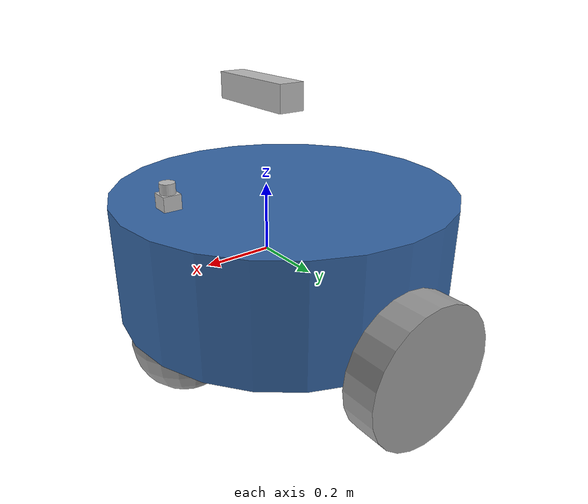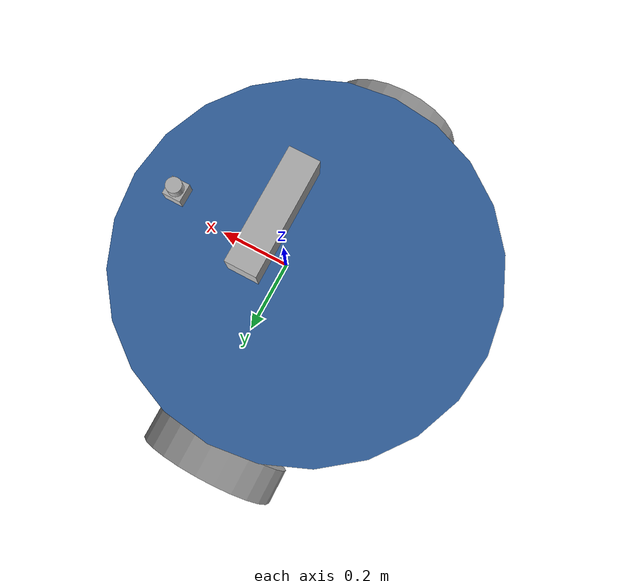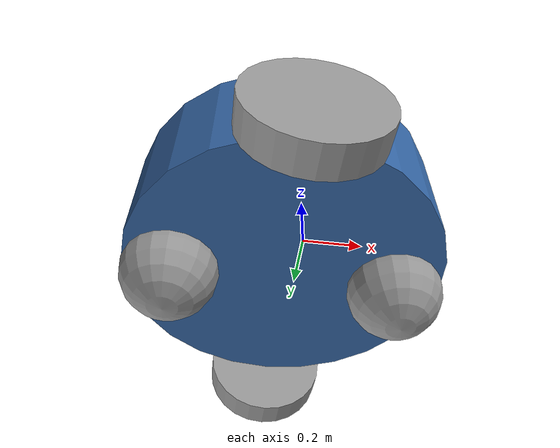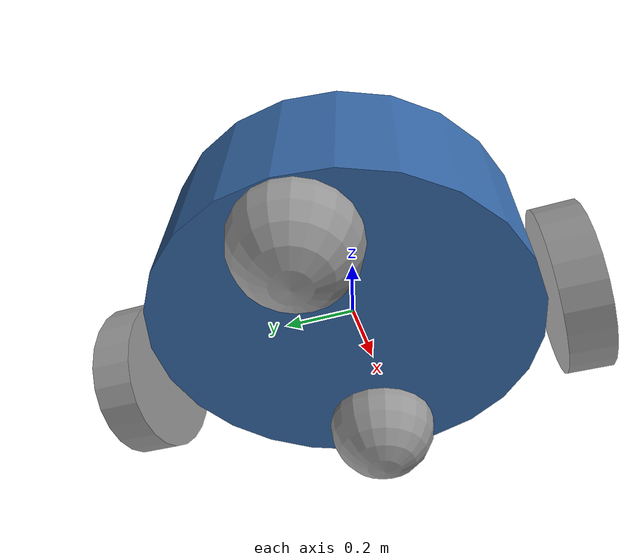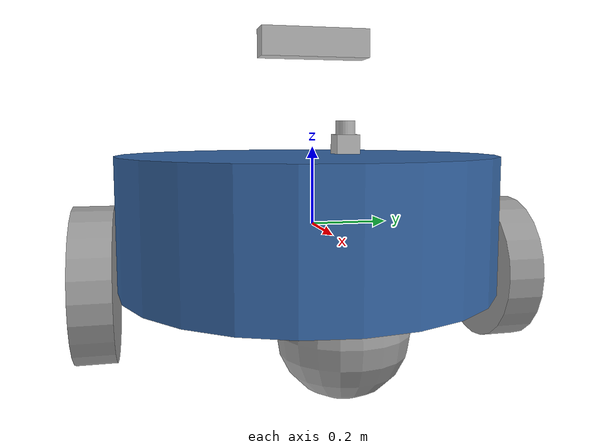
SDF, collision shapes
<?xml version='1.0'?>
<sdf version='1.6'>
  <model name='model_2'>
    <link name='chassis'>
      <inertial>
        <mass>922.843</mass>
        <inertia>
          <ixx>134.581</ixx>
          <ixy>0</ixy>
          <ixz>0</ixz>
          <iyy>134.581</iyy>
          <iyz>0</iyz>
          <izz>115.355</izz>
        </inertia>
        <pose frame=''>0 0 0 0 -0 0</pose>
      </inertial>
      <pose frame=''>-0.063314 0.000408 0.002511 0 -0 0</pose>
      <gravity>1</gravity>
      <self_collide>0</self_collide>
      <kinematic>0</kinematic>
      <enable_wind>0</enable_wind>
      <visual name='visual'>
        <pose frame=''>0 0 0 0 -0 0</pose>
        <geometry>
          <cylinder>
            <radius>0.5</radius>
            <length>0.35</length>
          </cylinder>
        </geometry>
        <material>
          <lighting>1</lighting>
          <script>
            <uri>file://media/materials/scripts/gazebo.material</uri>
            <name>Gazebo/Grey</name>
          </script>
          <shader type='vertex'>
            <normal_map>__default__</normal_map>
          </shader>
          <ambient>0.204 0.396 0.643 1</ambient>
          <diffuse>0.7 0.7 0.7 1</diffuse>
          <specular>0.01 0.01 0.01 1</specular>
          <emissive>0 0 0 1</emissive>
        </material>
        <transparency>0</transparency>
        <cast_shadows>1</cast_shadows>
      </visual>
      <collision name='collision'>
        <laser_retro>0</laser_retro>
        <max_contacts>10</max_contacts>
        <pose frame=''>0 0 0 0 -0 0</pose>
        <geometry>
          <cylinder>
            <radius>0.5</radius>
            <length>0.35</length>
          </cylinder>
        </geometry>
        <surface>
          <friction>
            <ode>
              <mu>1</mu>
              <mu2>1</mu2>
              <fdir1>0 0 0</fdir1>
              <slip1>0</slip1>
              <slip2>0</slip2>
            </ode>
            <torsional>
              <coefficient>1</coefficient>
              <patch_radius>0</patch_radius>
              <surface_radius>0</surface_radius>
              <use_patch_radius>1</use_patch_radius>
              <ode>
                <slip>0</slip>
              </ode>
            </torsional>
          </friction>
          <bounce>
            <restitution_coefficient>0</restitution_coefficient>
            <threshold>1e+06</threshold>
          </bounce>
          <contact>
            <collide_without_contact>0</collide_without_contact>
            <collide_without_contact_bitmask>1</collide_without_contact_bitmask>
            <collide_bitmask>1</collide_bitmask>
            <ode>
              <soft_cfm>0</soft_cfm>
              <soft_erp>0.2</soft_erp>
              <kp>1e+13</kp>
              <kd>1</kd>
              <max_vel>0.01</max_vel>
              <min_depth>0</min_depth>
            </ode>
            <bullet>
              <split_impulse>1</split_impulse>
              <split_impulse_penetration_threshold>-0.01</split_impulse_penetration_threshold>
              <soft_cfm>0</soft_cfm>
              <soft_erp>0.2</soft_erp>
              <kp>1e+13</kp>
              <kd>1</kd>
            </bullet>
          </contact>
        </surface>
      </collision>
    </link>
    <link name='leftwheel'>
      <inertial>
        <mass>14.7655</mass>
        <inertia>
          <ixx>0.159959</ixx>
          <ixy>0</ixy>
          <ixz>0</ixz>
          <iyy>0.159959</iyy>
          <iyz>0</iyz>
          <izz>0.29531</izz>
        </inertia>
        <pose frame=''>0 0 0 0 -0 0</pose>
      </inertial>
      <pose frame=''>-0.063314 -0.549612 -0.147489 1.5707 -0 0</pose>
      <gravity>1</gravity>
      <self_collide>0</self_collide>
      <kinematic>0</kinematic>
      <enable_wind>0</enable_wind>
      <visual name='visual'>
        <pose frame=''>0 0 0 0 -0 0</pose>
        <geometry>
          <cylinder>
            <radius>0.2</radius>
            <length>0.1</length>
          </cylinder>
        </geometry>
        <material>
          <lighting>1</lighting>
          <script>
            <uri>file://media/materials/scripts/gazebo.material</uri>
            <name>Gazebo/Grey</name>
          </script>
          <shader type='vertex'>
            <normal_map>__default__</normal_map>
          </shader>
          <ambient>0.333 0.341 0.325 1</ambient>
          <diffuse>0.7 0.7 0.7 1</diffuse>
          <specular>0.01 0.01 0.01 1</specular>
          <emissive>0 0 0 1</emissive>
        </material>
        <transparency>0</transparency>
        <cast_shadows>1</cast_shadows>
      </visual>
      <collision name='collision'>
        <laser_retro>0</laser_retro>
        <max_contacts>10</max_contacts>
        <pose frame=''>0 0 0 0 -0 0</pose>
        <geometry>
          <cylinder>
            <radius>0.2</radius>
            <length>0.1</length>
          </cylinder>
        </geometry>
        <surface>
          <friction>
            <ode>
              <mu>1</mu>
              <mu2>1</mu2>
              <fdir1>0 0 0</fdir1>
              <slip1>0</slip1>
              <slip2>0</slip2>
            </ode>
            <torsional>
              <coefficient>1</coefficient>
              <patch_radius>0</patch_radius>
              <surface_radius>0</surface_radius>
              <use_patch_radius>1</use_patch_radius>
              <ode>
                <slip>0</slip>
              </ode>
            </torsional>
          </friction>
          <bounce>
            <restitution_coefficient>0</restitution_coefficient>
            <threshold>1e+06</threshold>
          </bounce>
          <contact>
            <collide_without_contact>0</collide_without_contact>
            <collide_without_contact_bitmask>1</collide_without_contact_bitmask>
            <collide_bitmask>1</collide_bitmask>
            <ode>
              <soft_cfm>0</soft_cfm>
              <soft_erp>0.2</soft_erp>
              <kp>1e+13</kp>
              <kd>1</kd>
              <max_vel>0.01</max_vel>
              <min_depth>0</min_depth>
            </ode>
            <bullet>
              <split_impulse>1</split_impulse>
              <split_impulse_penetration_threshold>-0.01</split_impulse_penetration_threshold>
              <soft_cfm>0</soft_cfm>
              <soft_erp>0.2</soft_erp>
              <kp>1e+13</kp>
              <kd>1</kd>
            </bullet>
          </contact>
        </surface>
      </collision>
    </link>
    <link name='rightwheel'>
      <inertial>
        <mass>14.7655</mass>
        <inertia>
          <ixx>0.159959</ixx>
          <ixy>0</ixy>
          <ixz>0</ixz>
          <iyy>0.159959</iyy>
          <iyz>0</iyz>
          <izz>0.29531</izz>
        </inertia>
        <pose frame=''>0 0 0 0 -0 0</pose>
      </inertial>
      <pose frame=''>-0.063314 0.550427 -0.147489 1.5707 -0 0</pose>
      <gravity>1</gravity>
      <self_collide>0</self_collide>
      <kinematic>0</kinematic>
      <enable_wind>0</enable_wind>
      <visual name='visual'>
        <pose frame=''>0 0 0 0 -0 0</pose>
        <geometry>
          <cylinder>
            <radius>0.2</radius>
            <length>0.1</length>
          </cylinder>
        </geometry>
        <material>
          <lighting>1</lighting>
          <script>
            <uri>file://media/materials/scripts/gazebo.material</uri>
            <name>Gazebo/Grey</name>
          </script>
          <shader type='vertex'>
            <normal_map>__default__</normal_map>
          </shader>
          <ambient>0.333 0.341 0.325 1</ambient>
          <diffuse>0.7 0.7 0.7 1</diffuse>
          <specular>0.01 0.01 0.01 1</specular>
          <emissive>0 0 0 1</emissive>
        </material>
        <transparency>0</transparency>
        <cast_shadows>1</cast_shadows>
      </visual>
      <collision name='collision'>
        <laser_retro>0</laser_retro>
        <max_contacts>10</max_contacts>
        <pose frame=''>0 0 0 0 -0 0</pose>
        <geometry>
          <cylinder>
            <radius>0.2</radius>
            <length>0.1</length>
          </cylinder>
        </geometry>
        <surface>
          <friction>
            <ode>
              <mu>1</mu>
              <mu2>1</mu2>
              <fdir1>0 0 0</fdir1>
              <slip1>0</slip1>
              <slip2>0</slip2>
            </ode>
            <torsional>
              <coefficient>1</coefficient>
              <patch_radius>0</patch_radius>
              <surface_radius>0</surface_radius>
              <use_patch_radius>1</use_patch_radius>
              <ode>
                <slip>0</slip>
              </ode>
            </torsional>
          </friction>
          <bounce>
            <restitution_coefficient>0</restitution_coefficient>
            <threshold>1e+06</threshold>
          </bounce>
          <contact>
            <collide_without_contact>0</collide_without_contact>
            <collide_without_contact_bitmask>1</collide_without_contact_bitmask>
            <collide_bitmask>1</collide_bitmask>
            <ode>
              <soft_cfm>0</soft_cfm>
              <soft_erp>0.2</soft_erp>
              <kp>1e+13</kp>
              <kd>1</kd>
              <max_vel>0.01</max_vel>
              <min_depth>0</min_depth>
            </ode>
            <bullet>
              <split_impulse>1</split_impulse>
              <split_impulse_penetration_threshold>-0.01</split_impulse_penetration_threshold>
              <soft_cfm>0</soft_cfm>
              <soft_erp>0.2</soft_erp>
              <kp>1e+13</kp>
              <kd>1</kd>
            </bullet>
          </contact>
        </surface>
      </collision>
    </link>
    <link name='frontwheel'>
      <inertial>
        <mass>16.6112</mass>
        <inertia>
          <ixx>0.149501</ixx>
          <ixy>0</ixy>
          <ixz>0</ixz>
          <iyy>0.149501</iyy>
          <iyz>0</iyz>
          <izz>0.149501</izz>
        </inertia>
        <pose frame=''>0 0 0 0 -0 0</pose>
      </inertial>
      <pose frame=''>0.286686 0.000408 -0.197489 0 -0 0</pose>
      <gravity>1</gravity>
      <self_collide>0</self_collide>
      <kinematic>0</kinematic>
      <enable_wind>0</enable_wind>
      <visual name='visual'>
        <pose frame=''>0 0 0 0 -0 0</pose>
        <geometry>
          <sphere>
            <radius>0.15</radius>
          </sphere>
        </geometry>
        <material>
          <lighting>1</lighting>
          <script>
            <uri>file://media/materials/scripts/gazebo.material</uri>
            <name>Gazebo/Grey</name>
          </script>
          <shader type='vertex'>
            <normal_map>__default__</normal_map>
          </shader>
          <ambient>0.333 0.341 0.325 1</ambient>
          <diffuse>0.7 0.7 0.7 1</diffuse>
          <specular>0.01 0.01 0.01 1</specular>
          <emissive>0 0 0 1</emissive>
        </material>
        <transparency>0</transparency>
        <cast_shadows>1</cast_shadows>
      </visual>
      <collision name='collision'>
        <laser_retro>0</laser_retro>
        <max_contacts>10</max_contacts>
        <pose frame=''>0 0 0 0 -0 0</pose>
        <geometry>
          <sphere>
            <radius>0.15</radius>
          </sphere>
        </geometry>
        <surface>
          <friction>
            <ode>
              <mu>1</mu>
              <mu2>1</mu2>
              <fdir1>0 0 0</fdir1>
              <slip1>0</slip1>
              <slip2>0</slip2>
            </ode>
            <torsional>
              <coefficient>1</coefficient>
              <patch_radius>0</patch_radius>
              <surface_radius>0</surface_radius>
              <use_patch_radius>1</use_patch_radius>
              <ode>
                <slip>0</slip>
              </ode>
            </torsional>
          </friction>
          <bounce>
            <restitution_coefficient>0</restitution_coefficient>
            <threshold>1e+06</threshold>
          </bounce>
          <contact>
            <collide_without_contact>0</collide_without_contact>
            <collide_without_contact_bitmask>1</collide_without_contact_bitmask>
            <collide_bitmask>1</collide_bitmask>
            <ode>
              <soft_cfm>0</soft_cfm>
              <soft_erp>0.2</soft_erp>
              <kp>1e+13</kp>
              <kd>1</kd>
              <max_vel>0.01</max_vel>
              <min_depth>0</min_depth>
            </ode>
            <bullet>
              <split_impulse>1</split_impulse>
              <split_impulse_penetration_threshold>-0.01</split_impulse_penetration_threshold>
              <soft_cfm>0</soft_cfm>
              <soft_erp>0.2</soft_erp>
              <kp>1e+13</kp>
              <kd>1</kd>
            </bullet>
          </contact>
        </surface>
      </collision>
    </link>
    <link name='backwheel'>
      <inertial>
        <mass>16.6112</mass>
        <inertia>
          <ixx>0.149501</ixx>
          <ixy>0</ixy>
          <ixz>0</ixz>
          <iyy>0.149501</iyy>
          <iyz>0</iyz>
          <izz>0.149501</izz>
        </inertia>
        <pose frame=''>0 0 0 0 -0 0</pose>
      </inertial>
      <pose frame=''>-0.413314 0.000408 -0.197489 0 -0 0</pose>
      <gravity>1</gravity>
      <self_collide>0</self_collide>
      <kinematic>0</kinematic>
      <enable_wind>0</enable_wind>
      <visual name='visual'>
        <pose frame=''>0 0 0 0 -0 0</pose>
        <geometry>
          <sphere>
            <radius>0.15</radius>
          </sphere>
        </geometry>
        <material>
          <lighting>1</lighting>
          <script>
            <uri>file://media/materials/scripts/gazebo.material</uri>
            <name>Gazebo/Grey</name>
          </script>
          <shader type='vertex'>
            <normal_map>__default__</normal_map>
          </shader>
          <ambient>0.333 0.341 0.325 1</ambient>
          <diffuse>0.7 0.7 0.7 1</diffuse>
          <specular>0.01 0.01 0.01 1</specular>
          <emissive>0 0 0 1</emissive>
        </material>
        <transparency>0</transparency>
        <cast_shadows>1</cast_shadows>
      </visual>
      <collision name='collision'>
        <laser_retro>0</laser_retro>
        <max_contacts>10</max_contacts>
        <pose frame=''>0 0 0 0 -0 0</pose>
        <geometry>
          <sphere>
            <radius>0.15</radius>
          </sphere>
        </geometry>
        <surface>
          <friction>
            <ode>
              <mu>1</mu>
              <mu2>1</mu2>
              <fdir1>0 0 0</fdir1>
              <slip1>0</slip1>
              <slip2>0</slip2>
            </ode>
            <torsional>
              <coefficient>1</coefficient>
              <patch_radius>0</patch_radius>
              <surface_radius>0</surface_radius>
              <use_patch_radius>1</use_patch_radius>
              <ode>
                <slip>0</slip>
              </ode>
            </torsional>
          </friction>
          <bounce>
            <restitution_coefficient>0</restitution_coefficient>
            <threshold>1e+06</threshold>
          </bounce>
          <contact>
            <collide_without_contact>0</collide_without_contact>
            <collide_without_contact_bitmask>1</collide_without_contact_bitmask>
            <collide_bitmask>1</collide_bitmask>
            <ode>
              <soft_cfm>0</soft_cfm>
              <soft_erp>0.2</soft_erp>
              <kp>1e+13</kp>
              <kd>1</kd>
              <max_vel>0.01</max_vel>
              <min_depth>0</min_depth>
            </ode>
            <bullet>
              <split_impulse>1</split_impulse>
              <split_impulse_penetration_threshold>-0.01</split_impulse_penetration_threshold>
              <soft_cfm>0</soft_cfm>
              <soft_erp>0.2</soft_erp>
              <kp>1e+13</kp>
              <kd>1</kd>
            </bullet>
          </contact>
        </surface>
      </collision>
    </link>
    <model name='hokuyo'>
      <pose frame=''>0.302505 -0.001123 0.227354 0 -0 0</pose>
      <link name='link'>
        <inertial>
          <mass>0.1</mass>
        </inertial>
        <visual name='visual'>
          <geometry>
            <mesh>
              <uri>model://hokuyo/meshes/hokuyo.dae</uri>
            </mesh>
          </geometry>
        </visual>
        <collision name='collision-base'>
          <pose frame=''>0 0 -0.0145 0 -0 0</pose>
          <geometry>
            <box>
              <size>0.05 0.05 0.041</size>
            </box>
          </geometry>
        </collision>
        <collision name='collision-top'>
          <pose frame=''>0 0 0.0205 0 -0 0</pose>
          <geometry>
            <cylinder>
              <radius>0.021</radius>
              <length>0.029</length>
            </cylinder>
          </geometry>
        </collision>
        <sensor name='laser' type='ray'>
          <pose frame=''>0.01 0 0.0175 0 -0 0</pose>
          <ray>
            <scan>
              <horizontal>
                <samples>640</samples>
                <resolution>1</resolution>
                <min_angle>-2.26889</min_angle>
                <max_angle>2.2689</max_angle>
              </horizontal>
            </scan>
            <range>
              <min>0.08</min>
              <max>10</max>
              <resolution>0.01</resolution>
            </range>
          </ray>
          <plugin name='laser' filename='libRayPlugin.so'/>
          <always_on>1</always_on>
          <update_rate>30</update_rate>
          <visualize>1</visualize>
        </sensor>
      </link>
    </model>
    <model name='kinect'>
      <pose frame=''>0.014066 -0.000914 0.460089 0 -0 0</pose>
      <link name='link'>
        <inertial>
          <mass>0.1</mass>
        </inertial>
        <collision name='collision'>
          <geometry>
            <box>
              <size>0.073 0.276 0.072</size>
            </box>
          </geometry>
        </collision>
        <visual name='visual'>
          <geometry>
            <mesh>
              <uri>model://kinect/meshes/kinect.dae</uri>
            </mesh>
          </geometry>
        </visual>
        <sensor name='camera' type='depth'>
          <update_rate>20</update_rate>
          <camera name='__default__'>
            <horizontal_fov>1.0472</horizontal_fov>
            <image>
              <width>640</width>
              <height>480</height>
              <format>R8G8B8</format>
            </image>
            <clip>
              <near>0.05</near>
              <far>3</far>
            </clip>
          </camera>
        </sensor>
      </link>
    </model>
    <joint name='jointleftwheel' type='revolute'>
      <parent>chassis</parent>
      <child>leftwheel</child>
      <pose frame=''>0 0 0 0 -0 0</pose>
      <axis>
        <xyz>0 0 1</xyz>
        <use_parent_model_frame>0</use_parent_model_frame>
        <limit>
          <lower>-1.79769e+308</lower>
          <upper>1.79769e+308</upper>
          <effort>-1</effort>
          <velocity>-1</velocity>
        </limit>
        <dynamics>
          <spring_reference>0</spring_reference>
          <spring_stiffness>0</spring_stiffness>
          <damping>0</damping>
        </dynamics>
      </axis>
      <physics>
        <ode>
          <limit>
            <cfm>0</cfm>
            <erp>0.2</erp>
          </limit>
          <suspension>
            <cfm>0</cfm>
            <erp>0.2</erp>
          </suspension>
        </ode>
      </physics>
    </joint>
    <joint name='jointrightwheel' type='revolute'>
      <parent>chassis</parent>
      <child>rightwheel</child>
      <pose frame=''>0 0 0 0 -0 0</pose>
      <axis>
        <xyz>0 0 1</xyz>
        <use_parent_model_frame>0</use_parent_model_frame>
        <limit>
          <lower>-1.79769e+308</lower>
          <upper>1.79769e+308</upper>
          <effort>-1</effort>
          <velocity>-1</velocity>
        </limit>
        <dynamics>
          <spring_reference>0</spring_reference>
          <spring_stiffness>0</spring_stiffness>
          <damping>0</damping>
          <friction>0</friction>
        </dynamics>
      </axis>
      <physics>
        <ode>
          <limit>
            <cfm>0</cfm>
            <erp>0.2</erp>
          </limit>
          <suspension>
            <cfm>0</cfm>
            <erp>0.2</erp>
          </suspension>
        </ode>
      </physics>
    </joint>
    <joint name='jointfrontwheel' type='ball'>
      <parent>chassis</parent>
      <child>frontwheel</child>
      <pose frame=''>0 0 0 0 -0 0</pose>
      <physics>
        <ode>
          <limit>
            <cfm>0</cfm>
            <erp>0.2</erp>
          </limit>
          <suspension>
            <cfm>0</cfm>
            <erp>0.2</erp>
          </suspension>
        </ode>
      </physics>
    </joint>
    <joint name='jointbackwheel' type='ball'>
      <parent>chassis</parent>
      <child>backwheel</child>
      <pose frame=''>0 0 0 0 -0 0</pose>
      <physics>
        <ode>
          <limit>
            <cfm>0</cfm>
            <erp>0.2</erp>
          </limit>
          <suspension>
            <cfm>0</cfm>
            <erp>0.2</erp>
          </suspension>
        </ode>
      </physics>
    </joint>
    <joint name='jointhokuyo' type='fixed'>
      <parent>chassis</parent>
      <child>hokuyo::link</child>
      <pose frame=''>0 0 0 0 -0 0</pose>
      <physics>
        <ode>
          <limit>
            <cfm>0</cfm>
            <erp>0.2</erp>
          </limit>
          <suspension>
            <cfm>0</cfm>
            <erp>0.2</erp>
          </suspension>
        </ode>
      </physics>
    </joint>
    <joint name='jointkinect' type='fixed'>
      <parent>chassis</parent>
      <child>kinect::link</child>
      <pose frame=''>0 0 0 0 -0 0</pose>
      <physics>
        <ode>
          <limit>
            <cfm>0</cfm>
            <erp>0.2</erp>
          </limit>
          <suspension>
            <cfm>0</cfm>
            <erp>0.2</erp>
          </suspension>
        </ode>
      </physics>
    </joint>
    <static>0</static>
    <allow_auto_disable>1</allow_auto_disable>
    <plugin name='diff_drive_control' filename='libgazebo_ros_diff_drive.so'/>
    <plugin name='plugin_hokuyo' filename='libgazebo_ros_gpu_laser.so'/>
    <plugin name='plugin_imu' filename='libgazebo_ros_imu.so'/>
    <plugin name='plugin_kinect' filename='libgazebo_ros_openni_kinect.so'/>
  </model>
</sdf>
